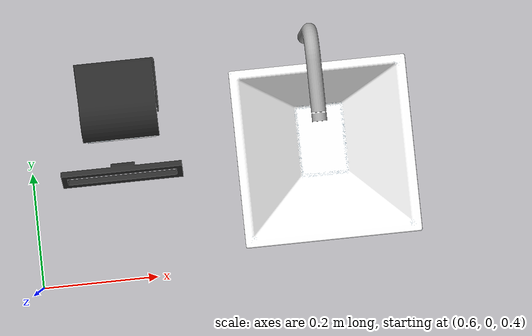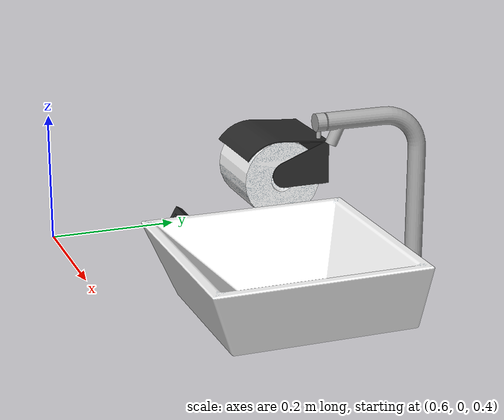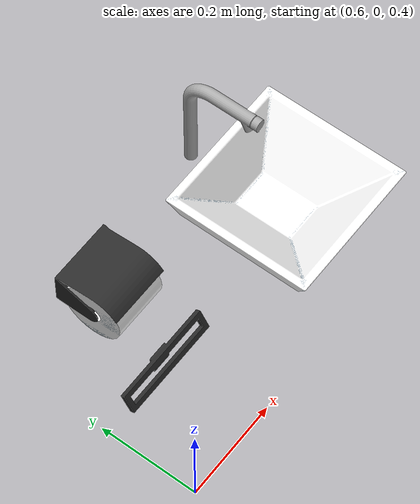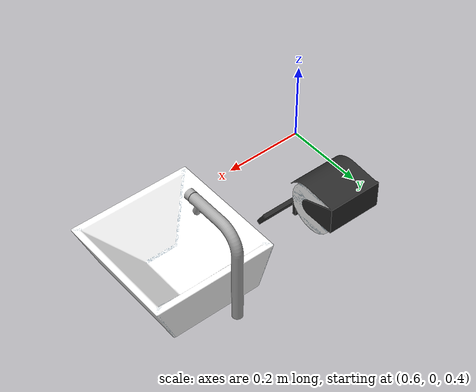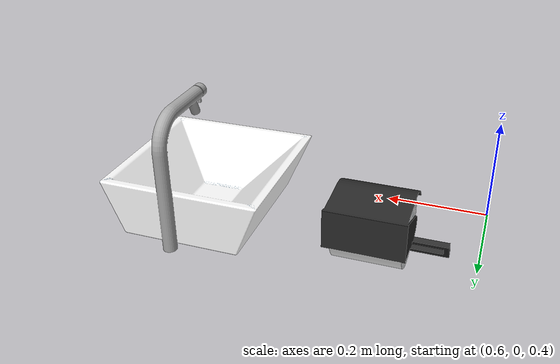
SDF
<?xml version="1.0" ?>
<sdf version="1.5">
	<model name="model_1">
		<static>1</static>
		<link name="link">
			<collision name="collision">
				<geometry>
					<mesh>
						<uri>model://model_1/meshes/model.dae</uri>
					</mesh>
				</geometry>
			</collision>
			<visual name="visual">
				<geometry>
					<mesh>
						<uri>model://model_1/meshes/model.dae</uri>
					</mesh>
				</geometry>
			</visual>
		</link>
	</model>
</sdf>
